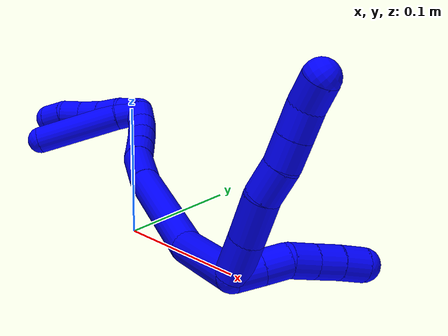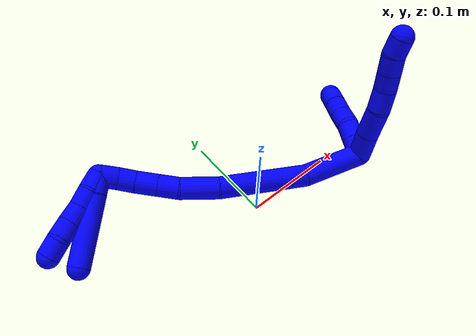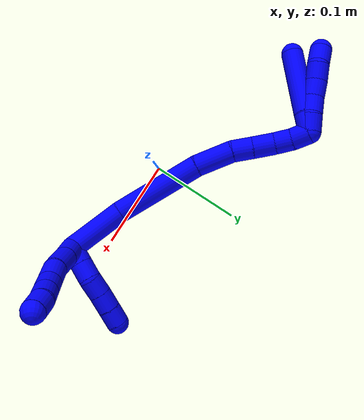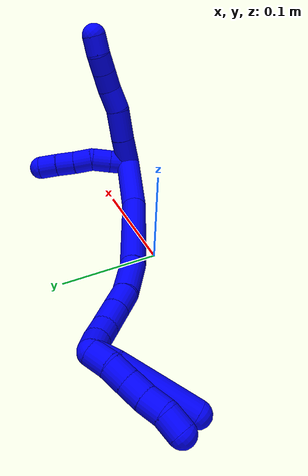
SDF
<sdf version="1.7">
 <world name="default">
  <model name="1">
   <static>0</static>
   <link name="1">
    <collision name="collision-cylinder-e_1_2_8">
     <pose>-0.00695 -0.004266 0.01298 0.317555 -0.470546 -0.076731</pose>
     <geometry><cylinder><radius>0.0125</radius><length>0.030659</length></cylinder></geometry>
     <surface>
      <friction><ode><mu>1.16</mu><mu2>1.16</mu2><slip1>0</slip1><slip2>0</slip2></ode></friction>
      <contact><ode><kp>1e+06</kp><kd>1</kd><max_vel>0</max_vel><min_depth>0.001</min_depth></ode></contact>
     </surface>
    </collision>
    <visual name="visual-cylinder-e_1_2_8">
     <pose>-0.00695 -0.004266 0.01298 0.317555 -0.470546 -0.076731</pose>
     <geometry><cylinder><radius>0.0125</radius><length>0.030659</length></cylinder></geometry>
     <material><ambient>0 0 1 1</ambient></material>
    </visual>
    <collision name="collision-cylinder-e_2_8_9">
     <pose>-0.021501 -0.013913 0.039943 0.367319 -0.469513 -0.088793</pose>
     <geometry><cylinder><radius>0.0125</radius><length>0.0336</length></cylinder></geometry>
     <surface>
      <friction><ode><mu>1.16</mu><mu2>1.16</mu2><slip1>0</slip1><slip2>0</slip2></ode></friction>
      <contact><ode><kp>1e+06</kp><kd>1</kd><max_vel>0</max_vel><min_depth>0.001</min_depth></ode></contact>
     </surface>
    </collision>
    <visual name="visual-cylinder-e_2_8_9">
     <pose>-0.021501 -0.013913 0.039943 0.367319 -0.469513 -0.088793</pose>
     <geometry><cylinder><radius>0.0125</radius><length>0.0336</length></cylinder></geometry>
     <material><ambient>0 0 1 1</ambient></material>
    </visual>
    <collision name="collision-cylinder-e_3_9_10">
     <pose>-0.033022 -0.021646 0.065384 0.202508 -0.323308 -0.033135</pose>
     <geometry><cylinder><radius>0.0125</radius><length>0.024673</length></cylinder></geometry>
     <surface>
      <friction><ode><mu>1.16</mu><mu2>1.16</mu2><slip1>0</slip1><slip2>0</slip2></ode></friction>
      <contact><ode><kp>1e+06</kp><kd>1</kd><max_vel>0</max_vel><min_depth>0.001</min_depth></ode></contact>
     </surface>
    </collision>
    <visual name="visual-cylinder-e_3_9_10">
     <pose>-0.033022 -0.021646 0.065384 0.202508 -0.323308 -0.033135</pose>
     <geometry><cylinder><radius>0.0125</radius><length>0.024673</length></cylinder></geometry>
     <material><ambient>0 0 1 1</ambient></material>
    </visual>
    <collision name="collision-cylinder-e_4_10_11">
     <pose>-0.04185 -0.025685 0.085735 0.187424 -0.496954 -0.047684</pose>
     <geometry><cylinder><radius>0.0125</radius><length>0.020593</length></cylinder></geometry>
     <surface>
      <friction><ode><mu>1.16</mu><mu2>1.16</mu2><slip1>0</slip1><slip2>0</slip2></ode></friction>
      <contact><ode><kp>1e+06</kp><kd>1</kd><max_vel>0</max_vel><min_depth>0.001</min_depth></ode></contact>
     </surface>
    </collision>
    <visual name="visual-cylinder-e_4_10_11">
     <pose>-0.04185 -0.025685 0.085735 0.187424 -0.496954 -0.047684</pose>
     <geometry><cylinder><radius>0.0125</radius><length>0.020593</length></cylinder></geometry>
     <material><ambient>0 0 1 1</ambient></material>
    </visual>
    <collision name="collision-cylinder-e_5_11_12">
     <pose>-0.051636 -0.028999 0.1034 0.183462 -0.500275 -0.046996</pose>
     <geometry><cylinder><radius>0.0125</radius><length>0.020337</length></cylinder></geometry>
     <surface>
      <friction><ode><mu>1.16</mu><mu2>1.16</mu2><slip1>0</slip1><slip2>0</slip2></ode></friction>
      <contact><ode><kp>1e+06</kp><kd>1</kd><max_vel>0</max_vel><min_depth>0.001</min_depth></ode></contact>
     </surface>
    </collision>
    <visual name="visual-cylinder-e_5_11_12">
     <pose>-0.051636 -0.028999 0.1034 0.183462 -0.500275 -0.046996</pose>
     <geometry><cylinder><radius>0.0125</radius><length>0.020337</length></cylinder></geometry>
     <material><ambient>0 0 1 1</ambient></material>
    </visual>
    <collision name="collision-cylinder-e_6_12_6">
     <pose>-0.059996 -0.03399 0.121002 0.363952 -0.353145 -0.065643</pose>
     <geometry><cylinder><radius>0.0125</radius><length>0.020138</length></cylinder></geometry>
     <surface>
      <friction><ode><mu>1.16</mu><mu2>1.16</mu2><slip1>0</slip1><slip2>0</slip2></ode></friction>
      <contact><ode><kp>1e+06</kp><kd>1</kd><max_vel>0</max_vel><min_depth>0.001</min_depth></ode></contact>
     </surface>
    </collision>
    <visual name="visual-cylinder-e_6_12_6">
     <pose>-0.059996 -0.03399 0.121002 0.363952 -0.353145 -0.065643</pose>
     <geometry><cylinder><radius>0.0125</radius><length>0.020138</length></cylinder></geometry>
     <material><ambient>0 0 1 1</ambient></material>
    </visual>
    <collision name="collision-cylinder-e_1_2_13">
     <pose>0.003262 0.006006 0.0073 -0.688502 0.332241 -0.120081</pose>
     <geometry><cylinder><radius>0.0125</radius><length>0.02</length></cylinder></geometry>
     <surface>
      <friction><ode><mu>1.16</mu><mu2>1.16</mu2><slip1>0</slip1><slip2>0</slip2></ode></friction>
      <contact><ode><kp>1e+06</kp><kd>1</kd><max_vel>0</max_vel><min_depth>0.001</min_depth></ode></contact>
     </surface>
    </collision>
    <visual name="visual-cylinder-e_1_2_13">
     <pose>0.003262 0.006006 0.0073 -0.688502 0.332241 -0.120081</pose>
     <geometry><cylinder><radius>0.0125</radius><length>0.02</length></cylinder></geometry>
     <material><ambient>0 0 1 1</ambient></material>
    </visual>
    <collision name="collision-cylinder-e_2_13_14">
     <pose>0.009662 0.017962 0.022 -0.677097 0.31922 -0.113242</pose>
     <geometry><cylinder><radius>0.0125</radius><length>0.02</length></cylinder></geometry>
     <surface>
      <friction><ode><mu>1.16</mu><mu2>1.16</mu2><slip1>0</slip1><slip2>0</slip2></ode></friction>
      <contact><ode><kp>1e+06</kp><kd>1</kd><max_vel>0</max_vel><min_depth>0.001</min_depth></ode></contact>
     </surface>
    </collision>
    <visual name="visual-cylinder-e_2_13_14">
     <pose>0.009662 0.017962 0.022 -0.677097 0.31922 -0.113242</pose>
     <geometry><cylinder><radius>0.0125</radius><length>0.02</length></cylinder></geometry>
     <material><ambient>0 0 1 1</ambient></material>
    </visual>
    <collision name="collision-cylinder-e_3_14_15">
     <pose>0.018112 0.030813 0.034312 -0.952317 0.560044 -0.294483</pose>
     <geometry><cylinder><radius>0.0125</radius><length>0.02</length></cylinder></geometry>
     <surface>
      <friction><ode><mu>1.16</mu><mu2>1.16</mu2><slip1>0</slip1><slip2>0</slip2></ode></friction>
      <contact><ode><kp>1e+06</kp><kd>1</kd><max_vel>0</max_vel><min_depth>0.001</min_depth></ode></contact>
     </surface>
    </collision>
    <visual name="visual-cylinder-e_3_14_15">
     <pose>0.018112 0.030813 0.034312 -0.952317 0.560044 -0.294483</pose>
     <geometry><cylinder><radius>0.0125</radius><length>0.02</length></cylinder></geometry>
     <material><ambient>0 0 1 1</ambient></material>
    </visual>
    <collision name="collision-cylinder-e_4_15_16">
     <pose>0.028815 0.044244 0.044546 -0.886775 0.569386 -0.276197</pose>
     <geometry><cylinder><radius>0.0125</radius><length>0.02</length></cylinder></geometry>
     <surface>
      <friction><ode><mu>1.16</mu><mu2>1.16</mu2><slip1>0</slip1><slip2>0</slip2></ode></friction>
      <contact><ode><kp>1e+06</kp><kd>1</kd><max_vel>0</max_vel><min_depth>0.001</min_depth></ode></contact>
     </surface>
    </collision>
    <visual name="visual-cylinder-e_4_15_16">
     <pose>0.028815 0.044244 0.044546 -0.886775 0.569386 -0.276197</pose>
     <geometry><cylinder><radius>0.0125</radius><length>0.02</length></cylinder></geometry>
     <material><ambient>0 0 1 1</ambient></material>
    </visual>
    <collision name="collision-cylinder-e_5_16_5">
     <pose>0.039946 0.057281 0.054837 -0.918946 0.611312 -0.309757</pose>
     <geometry><cylinder><radius>0.0125</radius><length>0.02</length></cylinder></geometry>
     <surface>
      <friction><ode><mu>1.16</mu><mu2>1.16</mu2><slip1>0</slip1><slip2>0</slip2></ode></friction>
      <contact><ode><kp>1e+06</kp><kd>1</kd><max_vel>0</max_vel><min_depth>0.001</min_depth></ode></contact>
     </surface>
    </collision>
    <visual name="visual-cylinder-e_5_16_5">
     <pose>0.039946 0.057281 0.054837 -0.918946 0.611312 -0.309757</pose>
     <geometry><cylinder><radius>0.0125</radius><length>0.02</length></cylinder></geometry>
     <material><ambient>0 0 1 1</ambient></material>
    </visual>
    <collision name="collision-cylinder-e_1_2_17">
     <pose>-0.017722 0.022836 -0.016694 -2.20205 -0.559661 1.03016</pose>
     <geometry><cylinder><radius>0.0125</radius><length>0.066761</length></cylinder></geometry>
     <surface>
      <friction><ode><mu>1.16</mu><mu2>1.16</mu2><slip1>0</slip1><slip2>0</slip2></ode></friction>
      <contact><ode><kp>1e+06</kp><kd>1</kd><max_vel>0</max_vel><min_depth>0.001</min_depth></ode></contact>
     </surface>
    </collision>
    <visual name="visual-cylinder-e_1_2_17">
     <pose>-0.017722 0.022836 -0.016694 -2.20205 -0.559661 1.03016</pose>
     <geometry><cylinder><radius>0.0125</radius><length>0.066761</length></cylinder></geometry>
     <material><ambient>0 0 1 1</ambient></material>
    </visual>
    <collision name="collision-cylinder-e_2_17_18">
     <pose>-0.068981 0.081388 -0.046811 -1.9303 -0.721086 0.997172</pose>
     <geometry><cylinder><radius>0.0125</radius><length>0.101597</length></cylinder></geometry>
     <surface>
      <friction><ode><mu>1.16</mu><mu2>1.16</mu2><slip1>0</slip1><slip2>0</slip2></ode></friction>
      <contact><ode><kp>1e+06</kp><kd>1</kd><max_vel>0</max_vel><min_depth>0.001</min_depth></ode></contact>
     </surface>
    </collision>
    <visual name="visual-cylinder-e_2_17_18">
     <pose>-0.068981 0.081388 -0.046811 -1.9303 -0.721086 0.997172</pose>
     <geometry><cylinder><radius>0.0125</radius><length>0.101597</length></cylinder></geometry>
     <material><ambient>0 0 1 1</ambient></material>
    </visual>
    <collision name="collision-cylinder-e_3_18_19">
     <pose>-0.11514 0.134142 -0.063708 -1.77189 -0.627871 0.756758</pose>
     <geometry><cylinder><radius>0.0125</radius><length>0.042975</length></cylinder></geometry>
     <surface>
      <friction><ode><mu>1.16</mu><mu2>1.16</mu2><slip1>0</slip1><slip2>0</slip2></ode></friction>
      <contact><ode><kp>1e+06</kp><kd>1</kd><max_vel>0</max_vel><min_depth>0.001</min_depth></ode></contact>
     </surface>
    </collision>
    <visual name="visual-cylinder-e_3_18_19">
     <pose>-0.11514 0.134142 -0.063708 -1.77189 -0.627871 0.756758</pose>
     <geometry><cylinder><radius>0.0125</radius><length>0.042975</length></cylinder></geometry>
     <material><ambient>0 0 1 1</ambient></material>
    </visual>
    <collision name="collision-cylinder-e_4_19_20">
     <pose>-0.132983 0.16157 -0.06759 -1.61016 -0.465353 0.483336</pose>
     <geometry><cylinder><radius>0.0125</radius><length>0.023268</length></cylinder></geometry>
     <surface>
      <friction><ode><mu>1.16</mu><mu2>1.16</mu2><slip1>0</slip1><slip2>0</slip2></ode></friction>
      <contact><ode><kp>1e+06</kp><kd>1</kd><max_vel>0</max_vel><min_depth>0.001</min_depth></ode></contact>
     </surface>
    </collision>
    <visual name="visual-cylinder-e_4_19_20">
     <pose>-0.132983 0.16157 -0.06759 -1.61016 -0.465353 0.483336</pose>
     <geometry><cylinder><radius>0.0125</radius><length>0.023268</length></cylinder></geometry>
     <material><ambient>0 0 1 1</ambient></material>
    </visual>
    <collision name="collision-cylinder-e_5_20_21">
     <pose>-0.144107 0.183023 -0.06835 -1.6025 -0.489894 0.505022</pose>
     <geometry><cylinder><radius>0.0125</radius><length>0.025092</length></cylinder></geometry>
     <surface>
      <friction><ode><mu>1.16</mu><mu2>1.16</mu2><slip1>0</slip1><slip2>0</slip2></ode></friction>
      <contact><ode><kp>1e+06</kp><kd>1</kd><max_vel>0</max_vel><min_depth>0.001</min_depth></ode></contact>
     </surface>
    </collision>
    <visual name="visual-cylinder-e_5_20_21">
     <pose>-0.144107 0.183023 -0.06835 -1.6025 -0.489894 0.505022</pose>
     <geometry><cylinder><radius>0.0125</radius><length>0.025092</length></cylinder></geometry>
     <material><ambient>0 0 1 1</ambient></material>
    </visual>
    <collision name="collision-cylinder-e_6_21_22">
     <pose>-0.155866 0.202233 -0.068317 -1.52365 -0.622818 0.595827</pose>
     <geometry><cylinder><radius>0.0125</radius><length>0.020079</length></cylinder></geometry>
     <surface>
      <friction><ode><mu>1.16</mu><mu2>1.16</mu2><slip1>0</slip1><slip2>0</slip2></ode></friction>
      <contact><ode><kp>1e+06</kp><kd>1</kd><max_vel>0</max_vel><min_depth>0.001</min_depth></ode></contact>
     </surface>
    </collision>
    <visual name="visual-cylinder-e_6_21_22">
     <pose>-0.155866 0.202233 -0.068317 -1.52365 -0.622818 0.595827</pose>
     <geometry><cylinder><radius>0.0125</radius><length>0.020079</length></cylinder></geometry>
     <material><ambient>0 0 1 1</ambient></material>
    </visual>
    <collision name="collision-cylinder-e_7_22_1">
     <pose>-0.169006 0.217392 -0.067657 -1.53152 -0.803917 0.776013</pose>
     <geometry><cylinder><radius>0.0125</radius><length>0.020228</length></cylinder></geometry>
     <surface>
      <friction><ode><mu>1.16</mu><mu2>1.16</mu2><slip1>0</slip1><slip2>0</slip2></ode></friction>
      <contact><ode><kp>1e+06</kp><kd>1</kd><max_vel>0</max_vel><min_depth>0.001</min_depth></ode></contact>
     </surface>
    </collision>
    <visual name="visual-cylinder-e_7_22_1">
     <pose>-0.169006 0.217392 -0.067657 -1.53152 -0.803917 0.776013</pose>
     <geometry><cylinder><radius>0.0125</radius><length>0.020228</length></cylinder></geometry>
     <material><ambient>0 0 1 1</ambient></material>
    </visual>
    <collision name="collision-cylinder-e_1_1_23">
     <pose>-0.180514 0.221532 -0.076906 2.84871 -0.401633 -1.88752</pose>
     <geometry><cylinder><radius>0.0125</radius><length>0.021616</length></cylinder></geometry>
     <surface>
      <friction><ode><mu>1.16</mu><mu2>1.16</mu2><slip1>0</slip1><slip2>0</slip2></ode></friction>
      <contact><ode><kp>1e+06</kp><kd>1</kd><max_vel>0</max_vel><min_depth>0.001</min_depth></ode></contact>
     </surface>
    </collision>
    <visual name="visual-cylinder-e_1_1_23">
     <pose>-0.180514 0.221532 -0.076906 2.84871 -0.401633 -1.88752</pose>
     <geometry><cylinder><radius>0.0125</radius><length>0.021616</length></cylinder></geometry>
     <material><ambient>0 0 1 1</ambient></material>
    </visual>
    <collision name="collision-cylinder-e_2_23_4">
     <pose>-0.19798 0.211218 -0.122559 2.93844 -0.344633 -2.08201</pose>
     <geometry><cylinder><radius>0.0125</radius><length>0.078384</length></cylinder></geometry>
     <surface>
      <friction><ode><mu>1.16</mu><mu2>1.16</mu2><slip1>0</slip1><slip2>0</slip2></ode></friction>
      <contact><ode><kp>1e+06</kp><kd>1</kd><max_vel>0</max_vel><min_depth>0.001</min_depth></ode></contact>
     </surface>
    </collision>
    <visual name="visual-cylinder-e_2_23_4">
     <pose>-0.19798 0.211218 -0.122559 2.93844 -0.344633 -2.08201</pose>
     <geometry><cylinder><radius>0.0125</radius><length>0.078384</length></cylinder></geometry>
     <material><ambient>0 0 1 1</ambient></material>
    </visual>
    <collision name="collision-cylinder-e_1_1_24">
     <pose>-0.182448 0.223958 -0.075247 3.0849 -0.663543 -2.97735</pose>
     <geometry><cylinder><radius>0.0125</radius><length>0.02</length></cylinder></geometry>
     <surface>
      <friction><ode><mu>1.16</mu><mu2>1.16</mu2><slip1>0</slip1><slip2>0</slip2></ode></friction>
      <contact><ode><kp>1e+06</kp><kd>1</kd><max_vel>0</max_vel><min_depth>0.001</min_depth></ode></contact>
     </surface>
    </collision>
    <visual name="visual-cylinder-e_1_1_24">
     <pose>-0.182448 0.223958 -0.075247 3.0849 -0.663543 -2.97735</pose>
     <geometry><cylinder><radius>0.0125</radius><length>0.02</length></cylinder></geometry>
     <material><ambient>0 0 1 1</ambient></material>
    </visual>
    <collision name="collision-cylinder-e_2_24_25">
     <pose>-0.193236 0.224111 -0.091956 -3.07394 -0.481289 2.86754</pose>
     <geometry><cylinder><radius>0.0125</radius><length>0.02</length></cylinder></geometry>
     <surface>
      <friction><ode><mu>1.16</mu><mu2>1.16</mu2><slip1>0</slip1><slip2>0</slip2></ode></friction>
      <contact><ode><kp>1e+06</kp><kd>1</kd><max_vel>0</max_vel><min_depth>0.001</min_depth></ode></contact>
     </surface>
    </collision>
    <visual name="visual-cylinder-e_2_24_25">
     <pose>-0.193236 0.224111 -0.091956 -3.07394 -0.481289 2.86754</pose>
     <geometry><cylinder><radius>0.0125</radius><length>0.02</length></cylinder></geometry>
     <material><ambient>0 0 1 1</ambient></material>
    </visual>
    <collision name="collision-cylinder-e_3_25_26">
     <pose>-0.203686 0.225601 -0.108882 -3.03179 -0.621295 2.80252</pose>
     <geometry><cylinder><radius>0.0125</radius><length>0.02</length></cylinder></geometry>
     <surface>
      <friction><ode><mu>1.16</mu><mu2>1.16</mu2><slip1>0</slip1><slip2>0</slip2></ode></friction>
      <contact><ode><kp>1e+06</kp><kd>1</kd><max_vel>0</max_vel><min_depth>0.001</min_depth></ode></contact>
     </surface>
    </collision>
    <visual name="visual-cylinder-e_3_25_26">
     <pose>-0.203686 0.225601 -0.108882 -3.03179 -0.621295 2.80252</pose>
     <geometry><cylinder><radius>0.0125</radius><length>0.02</length></cylinder></geometry>
     <material><ambient>0 0 1 1</ambient></material>
    </visual>
    <collision name="collision-cylinder-e_4_26_27">
     <pose>-0.215801 0.22638 -0.124734 3.12717 -0.680818 -3.10087</pose>
     <geometry><cylinder><radius>0.0125</radius><length>0.02</length></cylinder></geometry>
     <surface>
      <friction><ode><mu>1.16</mu><mu2>1.16</mu2><slip1>0</slip1><slip2>0</slip2></ode></friction>
      <contact><ode><kp>1e+06</kp><kd>1</kd><max_vel>0</max_vel><min_depth>0.001</min_depth></ode></contact>
     </surface>
    </collision>
    <visual name="visual-cylinder-e_4_26_27">
     <pose>-0.215801 0.22638 -0.124734 3.12717 -0.680818 -3.10087</pose>
     <geometry><cylinder><radius>0.0125</radius><length>0.02</length></cylinder></geometry>
     <material><ambient>0 0 1 1</ambient></material>
    </visual>
    <collision name="collision-cylinder-e_5_27_3">
     <pose>-0.225992 0.227941 -0.14156 -2.95888 -0.40028 2.29319</pose>
     <geometry><cylinder><radius>0.0125</radius><length>0.02</length></cylinder></geometry>
     <surface>
      <friction><ode><mu>1.16</mu><mu2>1.16</mu2><slip1>0</slip1><slip2>0</slip2></ode></friction>
      <contact><ode><kp>1e+06</kp><kd>1</kd><max_vel>0</max_vel><min_depth>0.001</min_depth></ode></contact>
     </surface>
    </collision>
    <visual name="visual-cylinder-e_5_27_3">
     <pose>-0.225992 0.227941 -0.14156 -2.95888 -0.40028 2.29319</pose>
     <geometry><cylinder><radius>0.0125</radius><length>0.02</length></cylinder></geometry>
     <material><ambient>0 0 1 1</ambient></material>
    </visual>
    <collision name="collision-sphere-3">
     <pose>-0.229889 0.229615 -0.150616 0 -0 0</pose>
     <geometry><sphere><radius>0.0125</radius></sphere></geometry>
     <surface>
      <friction><ode><mu>1.16</mu><mu2>1.16</mu2><slip1>0</slip1><slip2>0</slip2></ode></friction>
      <contact><ode><kp>1e+06</kp><kd>1</kd><max_vel>0</max_vel><min_depth>0.001</min_depth></ode></contact>
     </surface>
    </collision>
    <visual name="visual-sphere-3">
     <pose>-0.229889 0.229615 -0.150616 0 -0 0</pose>
     <geometry><sphere><radius>0.0125</radius></sphere></geometry>
     <material><ambient>0 0 1 1</ambient></material>
    </visual>
    <collision name="collision-sphere-27">
     <pose>-0.222096 0.226268 -0.132504 0 -0 0</pose>
     <geometry><sphere><radius>0.0125</radius></sphere></geometry>
     <surface>
      <friction><ode><mu>1.16</mu><mu2>1.16</mu2><slip1>0</slip1><slip2>0</slip2></ode></friction>
      <contact><ode><kp>1e+06</kp><kd>1</kd><max_vel>0</max_vel><min_depth>0.001</min_depth></ode></contact>
     </surface>
    </collision>
    <visual name="visual-sphere-27">
     <pose>-0.222096 0.226268 -0.132504 0 -0 0</pose>
     <geometry><sphere><radius>0.0125</radius></sphere></geometry>
     <material><ambient>0 0 1 1</ambient></material>
    </visual>
    <collision name="collision-sphere-26">
     <pose>-0.209507 0.226492 -0.116964 0 -0 0</pose>
     <geometry><sphere><radius>0.0125</radius></sphere></geometry>
     <surface>
      <friction><ode><mu>1.16</mu><mu2>1.16</mu2><slip1>0</slip1><slip2>0</slip2></ode></friction>
      <contact><ode><kp>1e+06</kp><kd>1</kd><max_vel>0</max_vel><min_depth>0.001</min_depth></ode></contact>
     </surface>
    </collision>
    <visual name="visual-sphere-26">
     <pose>-0.209507 0.226492 -0.116964 0 -0 0</pose>
     <geometry><sphere><radius>0.0125</radius></sphere></geometry>
     <material><ambient>0 0 1 1</ambient></material>
    </visual>
    <collision name="collision-sphere-25">
     <pose>-0.197865 0.22471 -0.1008 0 -0 0</pose>
     <geometry><sphere><radius>0.0125</radius></sphere></geometry>
     <surface>
      <friction><ode><mu>1.16</mu><mu2>1.16</mu2><slip1>0</slip1><slip2>0</slip2></ode></friction>
      <contact><ode><kp>1e+06</kp><kd>1</kd><max_vel>0</max_vel><min_depth>0.001</min_depth></ode></contact>
     </surface>
    </collision>
    <visual name="visual-sphere-25">
     <pose>-0.197865 0.22471 -0.1008 0 -0 0</pose>
     <geometry><sphere><radius>0.0125</radius></sphere></geometry>
     <material><ambient>0 0 1 1</ambient></material>
    </visual>
    <collision name="collision-sphere-24">
     <pose>-0.188607 0.223511 -0.083112 0 -0 0</pose>
     <geometry><sphere><radius>0.0125</radius></sphere></geometry>
     <surface>
      <friction><ode><mu>1.16</mu><mu2>1.16</mu2><slip1>0</slip1><slip2>0</slip2></ode></friction>
      <contact><ode><kp>1e+06</kp><kd>1</kd><max_vel>0</max_vel><min_depth>0.001</min_depth></ode></contact>
     </surface>
    </collision>
    <visual name="visual-sphere-24">
     <pose>-0.188607 0.223511 -0.083112 0 -0 0</pose>
     <geometry><sphere><radius>0.0125</radius></sphere></geometry>
     <material><ambient>0 0 1 1</ambient></material>
    </visual>
    <collision name="collision-sphere-4">
     <pose>-0.211221 0.203775 -0.158688 0 -0 0</pose>
     <geometry><sphere><radius>0.0125</radius></sphere></geometry>
     <surface>
      <friction><ode><mu>1.16</mu><mu2>1.16</mu2><slip1>0</slip1><slip2>0</slip2></ode></friction>
      <contact><ode><kp>1e+06</kp><kd>1</kd><max_vel>0</max_vel><min_depth>0.001</min_depth></ode></contact>
     </surface>
    </collision>
    <visual name="visual-sphere-4">
     <pose>-0.211221 0.203775 -0.158688 0 -0 0</pose>
     <geometry><sphere><radius>0.0125</radius></sphere></geometry>
     <material><ambient>0 0 1 1</ambient></material>
    </visual>
    <collision name="collision-sphere-23">
     <pose>-0.184739 0.21866 -0.08643 0 -0 0</pose>
     <geometry><sphere><radius>0.0125</radius></sphere></geometry>
     <surface>
      <friction><ode><mu>1.16</mu><mu2>1.16</mu2><slip1>0</slip1><slip2>0</slip2></ode></friction>
      <contact><ode><kp>1e+06</kp><kd>1</kd><max_vel>0</max_vel><min_depth>0.001</min_depth></ode></contact>
     </surface>
    </collision>
    <visual name="visual-sphere-23">
     <pose>-0.184739 0.21866 -0.08643 0 -0 0</pose>
     <geometry><sphere><radius>0.0125</radius></sphere></geometry>
     <material><ambient>0 0 1 1</ambient></material>
    </visual>
    <collision name="collision-sphere-1">
     <pose>-0.176289 0.224404 -0.067381 0 -0 0</pose>
     <geometry><sphere><radius>0.0125</radius></sphere></geometry>
     <surface>
      <friction><ode><mu>1.16</mu><mu2>1.16</mu2><slip1>0</slip1><slip2>0</slip2></ode></friction>
      <contact><ode><kp>1e+06</kp><kd>1</kd><max_vel>0</max_vel><min_depth>0.001</min_depth></ode></contact>
     </surface>
    </collision>
    <visual name="visual-sphere-1">
     <pose>-0.176289 0.224404 -0.067381 0 -0 0</pose>
     <geometry><sphere><radius>0.0125</radius></sphere></geometry>
     <material><ambient>0 0 1 1</ambient></material>
    </visual>
    <collision name="collision-sphere-22">
     <pose>-0.161723 0.210379 -0.067932 0 -0 0</pose>
     <geometry><sphere><radius>0.0125</radius></sphere></geometry>
     <surface>
      <friction><ode><mu>1.16</mu><mu2>1.16</mu2><slip1>0</slip1><slip2>0</slip2></ode></friction>
      <contact><ode><kp>1e+06</kp><kd>1</kd><max_vel>0</max_vel><min_depth>0.001</min_depth></ode></contact>
     </surface>
    </collision>
    <visual name="visual-sphere-22">
     <pose>-0.161723 0.210379 -0.067932 0 -0 0</pose>
     <geometry><sphere><radius>0.0125</radius></sphere></geometry>
     <material><ambient>0 0 1 1</ambient></material>
    </visual>
    <collision name="collision-sphere-21">
     <pose>-0.15001 0.194088 -0.068701 0 -0 0</pose>
     <geometry><sphere><radius>0.0125</radius></sphere></geometry>
     <surface>
      <friction><ode><mu>1.16</mu><mu2>1.16</mu2><slip1>0</slip1><slip2>0</slip2></ode></friction>
      <contact><ode><kp>1e+06</kp><kd>1</kd><max_vel>0</max_vel><min_depth>0.001</min_depth></ode></contact>
     </surface>
    </collision>
    <visual name="visual-sphere-21">
     <pose>-0.15001 0.194088 -0.068701 0 -0 0</pose>
     <geometry><sphere><radius>0.0125</radius></sphere></geometry>
     <material><ambient>0 0 1 1</ambient></material>
    </visual>
    <collision name="collision-sphere-12">
     <pose>-0.056514 -0.030627 0.112173 0 -0 0</pose>
     <geometry><sphere><radius>0.0125</radius></sphere></geometry>
     <surface>
      <friction><ode><mu>1.16</mu><mu2>1.16</mu2><slip1>0</slip1><slip2>0</slip2></ode></friction>
      <contact><ode><kp>1e+06</kp><kd>1</kd><max_vel>0</max_vel><min_depth>0.001</min_depth></ode></contact>
     </surface>
    </collision>
    <visual name="visual-sphere-12">
     <pose>-0.056514 -0.030627 0.112173 0 -0 0</pose>
     <geometry><sphere><radius>0.0125</radius></sphere></geometry>
     <material><ambient>0 0 1 1</ambient></material>
    </visual>
    <collision name="collision-sphere-11">
     <pose>-0.046759 -0.027371 0.094627 0 -0 0</pose>
     <geometry><sphere><radius>0.0125</radius></sphere></geometry>
     <surface>
      <friction><ode><mu>1.16</mu><mu2>1.16</mu2><slip1>0</slip1><slip2>0</slip2></ode></friction>
      <contact><ode><kp>1e+06</kp><kd>1</kd><max_vel>0</max_vel><min_depth>0.001</min_depth></ode></contact>
     </surface>
    </collision>
    <visual name="visual-sphere-11">
     <pose>-0.046759 -0.027371 0.094627 0 -0 0</pose>
     <geometry><sphere><radius>0.0125</radius></sphere></geometry>
     <material><ambient>0 0 1 1</ambient></material>
    </visual>
    <collision name="collision-sphere-10">
     <pose>-0.036941 -0.023999 0.076843 0 -0 0</pose>
     <geometry><sphere><radius>0.0125</radius></sphere></geometry>
     <surface>
      <friction><ode><mu>1.16</mu><mu2>1.16</mu2><slip1>0</slip1><slip2>0</slip2></ode></friction>
      <contact><ode><kp>1e+06</kp><kd>1</kd><max_vel>0</max_vel><min_depth>0.001</min_depth></ode></contact>
     </surface>
    </collision>
    <visual name="visual-sphere-10">
     <pose>-0.036941 -0.023999 0.076843 0 -0 0</pose>
     <geometry><sphere><radius>0.0125</radius></sphere></geometry>
     <material><ambient>0 0 1 1</ambient></material>
    </visual>
    <collision name="collision-sphere-9">
     <pose>-0.029102 -0.019293 0.053926 0 -0 0</pose>
     <geometry><sphere><radius>0.0125</radius></sphere></geometry>
     <surface>
      <friction><ode><mu>1.16</mu><mu2>1.16</mu2><slip1>0</slip1><slip2>0</slip2></ode></friction>
      <contact><ode><kp>1e+06</kp><kd>1</kd><max_vel>0</max_vel><min_depth>0.001</min_depth></ode></contact>
     </surface>
    </collision>
    <visual name="visual-sphere-9">
     <pose>-0.029102 -0.019293 0.053926 0 -0 0</pose>
     <geometry><sphere><radius>0.0125</radius></sphere></geometry>
     <material><ambient>0 0 1 1</ambient></material>
    </visual>
    <collision name="collision-sphere-2">
     <geometry><sphere><radius>0.0125</radius></sphere></geometry>
     <surface>
      <friction><ode><mu>1.16</mu><mu2>1.16</mu2><slip1>0</slip1><slip2>0</slip2></ode></friction>
      <contact><ode><kp>1e+06</kp><kd>1</kd><max_vel>0</max_vel><min_depth>0.001</min_depth></ode></contact>
     </surface>
    </collision>
    <visual name="visual-sphere-2">
     <geometry><sphere><radius>0.0125</radius></sphere></geometry>
     <material><ambient>0 0 1 1</ambient></material>
    </visual>
    <collision name="collision-sphere-19">
     <pose>-0.127762 0.151181 -0.067181 0 -0 0</pose>
     <geometry><sphere><radius>0.0125</radius></sphere></geometry>
     <surface>
      <friction><ode><mu>1.16</mu><mu2>1.16</mu2><slip1>0</slip1><slip2>0</slip2></ode></friction>
      <contact><ode><kp>1e+06</kp><kd>1</kd><max_vel>0</max_vel><min_depth>0.001</min_depth></ode></contact>
     </surface>
    </collision>
    <visual name="visual-sphere-19">
     <pose>-0.127762 0.151181 -0.067181 0 -0 0</pose>
     <geometry><sphere><radius>0.0125</radius></sphere></geometry>
     <material><ambient>0 0 1 1</ambient></material>
    </visual>
    <collision name="collision-sphere-8">
     <pose>-0.0139 -0.008533 0.025961 0 -0 0</pose>
     <geometry><sphere><radius>0.0125</radius></sphere></geometry>
     <surface>
      <friction><ode><mu>1.16</mu><mu2>1.16</mu2><slip1>0</slip1><slip2>0</slip2></ode></friction>
      <contact><ode><kp>1e+06</kp><kd>1</kd><max_vel>0</max_vel><min_depth>0.001</min_depth></ode></contact>
     </surface>
    </collision>
    <visual name="visual-sphere-8">
     <pose>-0.0139 -0.008533 0.025961 0 -0 0</pose>
     <geometry><sphere><radius>0.0125</radius></sphere></geometry>
     <material><ambient>0 0 1 1</ambient></material>
    </visual>
    <collision name="collision-sphere-6">
     <pose>-0.063478 -0.037353 0.129831 0 -0 0</pose>
     <geometry><sphere><radius>0.0125</radius></sphere></geometry>
     <surface>
      <friction><ode><mu>1.16</mu><mu2>1.16</mu2><slip1>0</slip1><slip2>0</slip2></ode></friction>
      <contact><ode><kp>1e+06</kp><kd>1</kd><max_vel>0</max_vel><min_depth>0.001</min_depth></ode></contact>
     </surface>
    </collision>
    <visual name="visual-sphere-6">
     <pose>-0.063478 -0.037353 0.129831 0 -0 0</pose>
     <geometry><sphere><radius>0.0125</radius></sphere></geometry>
     <material><ambient>0 0 1 1</ambient></material>
    </visual>
    <collision name="collision-sphere-13">
     <pose>0.006523 0.012013 0.014599 0 -0 0</pose>
     <geometry><sphere><radius>0.0125</radius></sphere></geometry>
     <surface>
      <friction><ode><mu>1.16</mu><mu2>1.16</mu2><slip1>0</slip1><slip2>0</slip2></ode></friction>
      <contact><ode><kp>1e+06</kp><kd>1</kd><max_vel>0</max_vel><min_depth>0.001</min_depth></ode></contact>
     </surface>
    </collision>
    <visual name="visual-sphere-13">
     <pose>0.006523 0.012013 0.014599 0 -0 0</pose>
     <geometry><sphere><radius>0.0125</radius></sphere></geometry>
     <material><ambient>0 0 1 1</ambient></material>
    </visual>
    <collision name="collision-sphere-14">
     <pose>0.0128 0.02391 0.0294 0 -0 0</pose>
     <geometry><sphere><radius>0.0125</radius></sphere></geometry>
     <surface>
      <friction><ode><mu>1.16</mu><mu2>1.16</mu2><slip1>0</slip1><slip2>0</slip2></ode></friction>
      <contact><ode><kp>1e+06</kp><kd>1</kd><max_vel>0</max_vel><min_depth>0.001</min_depth></ode></contact>
     </surface>
    </collision>
    <visual name="visual-sphere-14">
     <pose>0.0128 0.02391 0.0294 0 -0 0</pose>
     <geometry><sphere><radius>0.0125</radius></sphere></geometry>
     <material><ambient>0 0 1 1</ambient></material>
    </visual>
    <collision name="collision-sphere-15">
     <pose>0.023424 0.037716 0.039224 0 -0 0</pose>
     <geometry><sphere><radius>0.0125</radius></sphere></geometry>
     <surface>
      <friction><ode><mu>1.16</mu><mu2>1.16</mu2><slip1>0</slip1><slip2>0</slip2></ode></friction>
      <contact><ode><kp>1e+06</kp><kd>1</kd><max_vel>0</max_vel><min_depth>0.001</min_depth></ode></contact>
     </surface>
    </collision>
    <visual name="visual-sphere-15">
     <pose>0.023424 0.037716 0.039224 0 -0 0</pose>
     <geometry><sphere><radius>0.0125</radius></sphere></geometry>
     <material><ambient>0 0 1 1</ambient></material>
    </visual>
    <collision name="collision-sphere-16">
     <pose>0.034207 0.050771 0.049869 0 -0 0</pose>
     <geometry><sphere><radius>0.0125</radius></sphere></geometry>
     <surface>
      <friction><ode><mu>1.16</mu><mu2>1.16</mu2><slip1>0</slip1><slip2>0</slip2></ode></friction>
      <contact><ode><kp>1e+06</kp><kd>1</kd><max_vel>0</max_vel><min_depth>0.001</min_depth></ode></contact>
     </surface>
    </collision>
    <visual name="visual-sphere-16">
     <pose>0.034207 0.050771 0.049869 0 -0 0</pose>
     <geometry><sphere><radius>0.0125</radius></sphere></geometry>
     <material><ambient>0 0 1 1</ambient></material>
    </visual>
    <collision name="collision-sphere-5">
     <pose>0.045685 0.063791 0.059804 0 -0 0</pose>
     <geometry><sphere><radius>0.0125</radius></sphere></geometry>
     <surface>
      <friction><ode><mu>1.16</mu><mu2>1.16</mu2><slip1>0</slip1><slip2>0</slip2></ode></friction>
      <contact><ode><kp>1e+06</kp><kd>1</kd><max_vel>0</max_vel><min_depth>0.001</min_depth></ode></contact>
     </surface>
    </collision>
    <visual name="visual-sphere-5">
     <pose>0.045685 0.063791 0.059804 0 -0 0</pose>
     <geometry><sphere><radius>0.0125</radius></sphere></geometry>
     <material><ambient>0 0 1 1</ambient></material>
    </visual>
    <collision name="collision-sphere-17">
     <pose>-0.035443 0.045673 -0.033389 0 -0 0</pose>
     <geometry><sphere><radius>0.0125</radius></sphere></geometry>
     <surface>
      <friction><ode><mu>1.16</mu><mu2>1.16</mu2><slip1>0</slip1><slip2>0</slip2></ode></friction>
      <contact><ode><kp>1e+06</kp><kd>1</kd><max_vel>0</max_vel><min_depth>0.001</min_depth></ode></contact>
     </surface>
    </collision>
    <visual name="visual-sphere-17">
     <pose>-0.035443 0.045673 -0.033389 0 -0 0</pose>
     <geometry><sphere><radius>0.0125</radius></sphere></geometry>
     <material><ambient>0 0 1 1</ambient></material>
    </visual>
    <collision name="collision-sphere-18">
     <pose>-0.102518 0.117103 -0.060234 0 -0 0</pose>
     <geometry><sphere><radius>0.0125</radius></sphere></geometry>
     <surface>
      <friction><ode><mu>1.16</mu><mu2>1.16</mu2><slip1>0</slip1><slip2>0</slip2></ode></friction>
      <contact><ode><kp>1e+06</kp><kd>1</kd><max_vel>0</max_vel><min_depth>0.001</min_depth></ode></contact>
     </surface>
    </collision>
    <visual name="visual-sphere-18">
     <pose>-0.102518 0.117103 -0.060234 0 -0 0</pose>
     <geometry><sphere><radius>0.0125</radius></sphere></geometry>
     <material><ambient>0 0 1 1</ambient></material>
    </visual>
    <collision name="collision-sphere-20">
     <pose>-0.138203 0.171959 -0.067999 0 -0 0</pose>
     <geometry><sphere><radius>0.0125</radius></sphere></geometry>
     <surface>
      <friction><ode><mu>1.16</mu><mu2>1.16</mu2><slip1>0</slip1><slip2>0</slip2></ode></friction>
      <contact><ode><kp>1e+06</kp><kd>1</kd><max_vel>0</max_vel><min_depth>0.001</min_depth></ode></contact>
     </surface>
    </collision>
    <visual name="visual-sphere-20">
     <pose>-0.138203 0.171959 -0.067999 0 -0 0</pose>
     <geometry><sphere><radius>0.0125</radius></sphere></geometry>
     <material><ambient>0 0 1 1</ambient></material>
    </visual>
    <inertial>
     <pose>-0.092155 0.101951 -0.031779 0 -0 0</pose>
     <mass>0.75</mass>
     <inertia><ixx>7.8e-05</ixx><ixy>0</ixy><ixz>0</ixz><iyy>0.000152</iyy><iyz>0</iyz><izz>1.4e-05</izz></inertia>
    </inertial>
   </link>
   <pose>0.12801 -0.030285 0.021752 -0.380894 0.777861 0.133463</pose>
  </model>
 </world>
</sdf>
